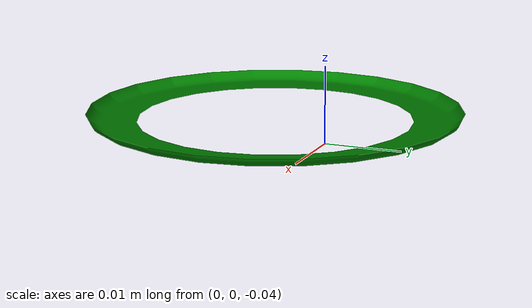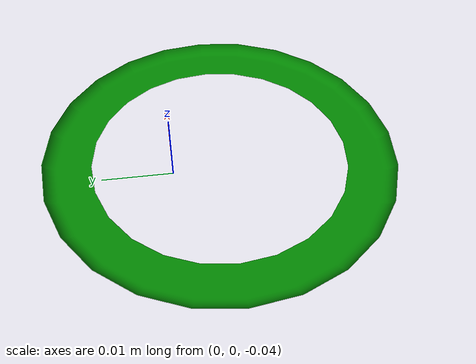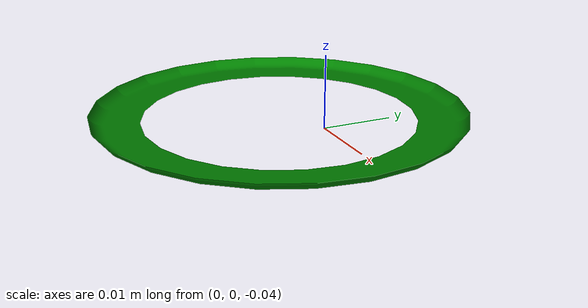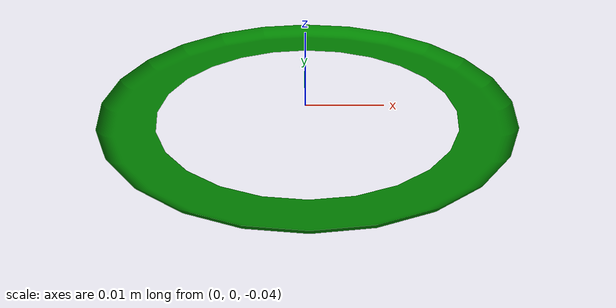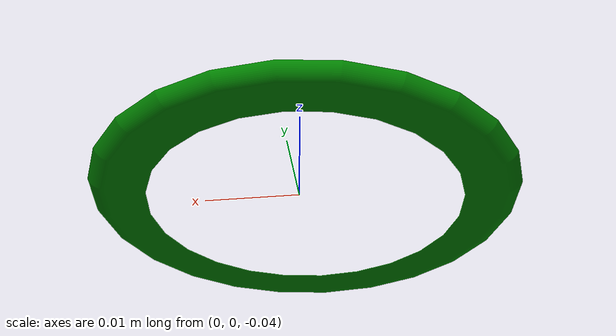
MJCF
<mujoco model="fad118b3">
  <asset>
  <texture file="../../../textures/ceramic.png" name="tex-fad118b3" type="2d" />
  <material name="fad118b3" reflectance="0.5" texrepeat="1 1" texture="tex-fad118b3" texuniform="false" />
  <mesh file="visual/model_normalized_0.obj" name="model_normalized_0_vis" scale="0.15 0.15 0.15" /><mesh file="collision/model_normalized_collision_13.obj" name="model_normalized_collision_13._coll" scale="0.15 0.15 0.15" /><mesh file="collision/model_normalized_collision_16.obj" name="model_normalized_collision_16._coll" scale="0.15 0.15 0.15" /><mesh file="collision/model_normalized_collision_30.obj" name="model_normalized_collision_30._coll" scale="0.15 0.15 0.15" /><mesh file="collision/model_normalized_collision_21.obj" name="model_normalized_collision_21._coll" scale="0.15 0.15 0.15" /><mesh file="collision/model_normalized_collision_1.obj" name="model_normalized_collision_1._coll" scale="0.15 0.15 0.15" /><mesh file="collision/model_normalized_collision_20.obj" name="model_normalized_collision_20._coll" scale="0.15 0.15 0.15" /><mesh file="collision/model_normalized_collision_27.obj" name="model_normalized_collision_27._coll" scale="0.15 0.15 0.15" /><mesh file="collision/model_normalized_collision_10.obj" name="model_normalized_collision_10._coll" scale="0.15 0.15 0.15" /><mesh file="collision/model_normalized_collision_24.obj" name="model_normalized_collision_24._coll" scale="0.15 0.15 0.15" /><mesh file="collision/model_normalized_collision_28.obj" name="model_normalized_collision_28._coll" scale="0.15 0.15 0.15" /><mesh file="collision/model_normalized_collision_25.obj" name="model_normalized_collision_25._coll" scale="0.15 0.15 0.15" /><mesh file="collision/model_normalized_collision_23.obj" name="model_normalized_collision_23._coll" scale="0.15 0.15 0.15" /><mesh file="collision/model_normalized_collision_6.obj" name="model_normalized_collision_6._coll" scale="0.15 0.15 0.15" /><mesh file="collision/model_normalized_collision_8.obj" name="model_normalized_collision_8._coll" scale="0.15 0.15 0.15" /><mesh file="collision/model_normalized_collision_2.obj" name="model_normalized_collision_2._coll" scale="0.15 0.15 0.15" /><mesh file="collision/model_normalized_collision_12.obj" name="model_normalized_collision_12._coll" scale="0.15 0.15 0.15" /><mesh file="collision/model_normalized_collision_4.obj" name="model_normalized_collision_4._coll" scale="0.15 0.15 0.15" /><mesh file="collision/model_normalized_collision_19.obj" name="model_normalized_collision_19._coll" scale="0.15 0.15 0.15" /><mesh file="collision/model_normalized_collision_5.obj" name="model_normalized_collision_5._coll" scale="0.15 0.15 0.15" /><mesh file="collision/model_normalized_collision_14.obj" name="model_normalized_collision_14._coll" scale="0.15 0.15 0.15" /><mesh file="collision/model_normalized_collision_11.obj" name="model_normalized_collision_11._coll" scale="0.15 0.15 0.15" /><mesh file="collision/model_normalized_collision_15.obj" name="model_normalized_collision_15._coll" scale="0.15 0.15 0.15" /><mesh file="collision/model_normalized_collision_18.obj" name="model_normalized_collision_18._coll" scale="0.15 0.15 0.15" /><mesh file="collision/model_normalized_collision_29.obj" name="model_normalized_collision_29._coll" scale="0.15 0.15 0.15" /><mesh file="collision/model_normalized_collision_26.obj" name="model_normalized_collision_26._coll" scale="0.15 0.15 0.15" /><mesh file="collision/model_normalized_collision_17.obj" name="model_normalized_collision_17._coll" scale="0.15 0.15 0.15" /><mesh file="collision/model_normalized_collision_31.obj" name="model_normalized_collision_31._coll" scale="0.15 0.15 0.15" /><mesh file="collision/model_normalized_collision_3.obj" name="model_normalized_collision_3._coll" scale="0.15 0.15 0.15" /><mesh file="collision/model_normalized_collision_9.obj" name="model_normalized_collision_9._coll" scale="0.15 0.15 0.15" /><mesh file="collision/model_normalized_collision_22.obj" name="model_normalized_collision_22._coll" scale="0.15 0.15 0.15" /><mesh file="collision/model_normalized_collision_7.obj" name="model_normalized_collision_7._coll" scale="0.15 0.15 0.15" /><mesh file="collision/model_normalized_collision_0.obj" name="model_normalized_collision_0._coll" scale="0.15 0.15 0.15" /><material name="material_0_24" specular="0.4000000000000001" shininess="0.01" rgba="0 0.501961 0 1.0" /></asset>
  <worldbody>
    <body>
      <body name="object">
      <geom solimp="0.998 0.998 0.001" solref="0.001 1" density="100" friction="0.95 0.3 0.1" type="mesh" mesh="model_normalized_0_vis" conaffinity="0" contype="0" group="1" material="material_0_24" /><geom solimp="0.998 0.998 0.001" solref="0.001 1" density="100" friction="0.95 0.3 0.1" type="mesh" mesh="model_normalized_collision_13._coll" group="0" rgba="0.8 0.8 0.8 0.0" /><geom solimp="0.998 0.998 0.001" solref="0.001 1" density="100" friction="0.95 0.3 0.1" type="mesh" mesh="model_normalized_collision_16._coll" group="0" rgba="0.8 0.8 0.8 0.0" /><geom solimp="0.998 0.998 0.001" solref="0.001 1" density="100" friction="0.95 0.3 0.1" type="mesh" mesh="model_normalized_collision_30._coll" group="0" rgba="0.8 0.8 0.8 0.0" /><geom solimp="0.998 0.998 0.001" solref="0.001 1" density="100" friction="0.95 0.3 0.1" type="mesh" mesh="model_normalized_collision_21._coll" group="0" rgba="0.8 0.8 0.8 0.0" /><geom solimp="0.998 0.998 0.001" solref="0.001 1" density="100" friction="0.95 0.3 0.1" type="mesh" mesh="model_normalized_collision_1._coll" group="0" rgba="0.8 0.8 0.8 0.0" /><geom solimp="0.998 0.998 0.001" solref="0.001 1" density="100" friction="0.95 0.3 0.1" type="mesh" mesh="model_normalized_collision_20._coll" group="0" rgba="0.8 0.8 0.8 0.0" /><geom solimp="0.998 0.998 0.001" solref="0.001 1" density="100" friction="0.95 0.3 0.1" type="mesh" mesh="model_normalized_collision_27._coll" group="0" rgba="0.8 0.8 0.8 0.0" /><geom solimp="0.998 0.998 0.001" solref="0.001 1" density="100" friction="0.95 0.3 0.1" type="mesh" mesh="model_normalized_collision_10._coll" group="0" rgba="0.8 0.8 0.8 0.0" /><geom solimp="0.998 0.998 0.001" solref="0.001 1" density="100" friction="0.95 0.3 0.1" type="mesh" mesh="model_normalized_collision_24._coll" group="0" rgba="0.8 0.8 0.8 0.0" /><geom solimp="0.998 0.998 0.001" solref="0.001 1" density="100" friction="0.95 0.3 0.1" type="mesh" mesh="model_normalized_collision_28._coll" group="0" rgba="0.8 0.8 0.8 0.0" /><geom solimp="0.998 0.998 0.001" solref="0.001 1" density="100" friction="0.95 0.3 0.1" type="mesh" mesh="model_normalized_collision_25._coll" group="0" rgba="0.8 0.8 0.8 0.0" /><geom solimp="0.998 0.998 0.001" solref="0.001 1" density="100" friction="0.95 0.3 0.1" type="mesh" mesh="model_normalized_collision_23._coll" group="0" rgba="0.8 0.8 0.8 0.0" /><geom solimp="0.998 0.998 0.001" solref="0.001 1" density="100" friction="0.95 0.3 0.1" type="mesh" mesh="model_normalized_collision_6._coll" group="0" rgba="0.8 0.8 0.8 0.0" /><geom solimp="0.998 0.998 0.001" solref="0.001 1" density="100" friction="0.95 0.3 0.1" type="mesh" mesh="model_normalized_collision_8._coll" group="0" rgba="0.8 0.8 0.8 0.0" /><geom solimp="0.998 0.998 0.001" solref="0.001 1" density="100" friction="0.95 0.3 0.1" type="mesh" mesh="model_normalized_collision_2._coll" group="0" rgba="0.8 0.8 0.8 0.0" /><geom solimp="0.998 0.998 0.001" solref="0.001 1" density="100" friction="0.95 0.3 0.1" type="mesh" mesh="model_normalized_collision_12._coll" group="0" rgba="0.8 0.8 0.8 0.0" /><geom solimp="0.998 0.998 0.001" solref="0.001 1" density="100" friction="0.95 0.3 0.1" type="mesh" mesh="model_normalized_collision_4._coll" group="0" rgba="0.8 0.8 0.8 0.0" /><geom solimp="0.998 0.998 0.001" solref="0.001 1" density="100" friction="0.95 0.3 0.1" type="mesh" mesh="model_normalized_collision_19._coll" group="0" rgba="0.8 0.8 0.8 0.0" /><geom solimp="0.998 0.998 0.001" solref="0.001 1" density="100" friction="0.95 0.3 0.1" type="mesh" mesh="model_normalized_collision_5._coll" group="0" rgba="0.8 0.8 0.8 0.0" /><geom solimp="0.998 0.998 0.001" solref="0.001 1" density="100" friction="0.95 0.3 0.1" type="mesh" mesh="model_normalized_collision_14._coll" group="0" rgba="0.8 0.8 0.8 0.0" /><geom solimp="0.998 0.998 0.001" solref="0.001 1" density="100" friction="0.95 0.3 0.1" type="mesh" mesh="model_normalized_collision_11._coll" group="0" rgba="0.8 0.8 0.8 0.0" /><geom solimp="0.998 0.998 0.001" solref="0.001 1" density="100" friction="0.95 0.3 0.1" type="mesh" mesh="model_normalized_collision_15._coll" group="0" rgba="0.8 0.8 0.8 0.0" /><geom solimp="0.998 0.998 0.001" solref="0.001 1" density="100" friction="0.95 0.3 0.1" type="mesh" mesh="model_normalized_collision_18._coll" group="0" rgba="0.8 0.8 0.8 0.0" /><geom solimp="0.998 0.998 0.001" solref="0.001 1" density="100" friction="0.95 0.3 0.1" type="mesh" mesh="model_normalized_collision_29._coll" group="0" rgba="0.8 0.8 0.8 0.0" /><geom solimp="0.998 0.998 0.001" solref="0.001 1" density="100" friction="0.95 0.3 0.1" type="mesh" mesh="model_normalized_collision_26._coll" group="0" rgba="0.8 0.8 0.8 0.0" /><geom solimp="0.998 0.998 0.001" solref="0.001 1" density="100" friction="0.95 0.3 0.1" type="mesh" mesh="model_normalized_collision_17._coll" group="0" rgba="0.8 0.8 0.8 0.0" /><geom solimp="0.998 0.998 0.001" solref="0.001 1" density="100" friction="0.95 0.3 0.1" type="mesh" mesh="model_normalized_collision_31._coll" group="0" rgba="0.8 0.8 0.8 0.0" /><geom solimp="0.998 0.998 0.001" solref="0.001 1" density="100" friction="0.95 0.3 0.1" type="mesh" mesh="model_normalized_collision_3._coll" group="0" rgba="0.8 0.8 0.8 0.0" /><geom solimp="0.998 0.998 0.001" solref="0.001 1" density="100" friction="0.95 0.3 0.1" type="mesh" mesh="model_normalized_collision_9._coll" group="0" rgba="0.8 0.8 0.8 0.0" /><geom solimp="0.998 0.998 0.001" solref="0.001 1" density="100" friction="0.95 0.3 0.1" type="mesh" mesh="model_normalized_collision_22._coll" group="0" rgba="0.8 0.8 0.8 0.0" /><geom solimp="0.998 0.998 0.001" solref="0.001 1" density="100" friction="0.95 0.3 0.1" type="mesh" mesh="model_normalized_collision_7._coll" group="0" rgba="0.8 0.8 0.8 0.0" /><geom solimp="0.998 0.998 0.001" solref="0.001 1" density="100" friction="0.95 0.3 0.1" type="mesh" mesh="model_normalized_collision_0._coll" group="0" rgba="0.8 0.8 0.8 0.0" /></body>
      <site rgba="0 0 0 0" size="0.005" pos="-0.002931396075 -0.029121752475000002 -0.05274015075" name="bottom_site" />
      <site rgba="0 0 0 0" size="0.005" pos="-0.002931396075 -0.029121752475000002 0.04179375164999999" name="top_site" />
      <site rgba="0 0 0 0" size="0.005" pos="0.029691103200000003 0.018284324249999998 -0.005473199550000003" name="horizontal_radius_site" />
    </body>
  </worldbody>
</mujoco>
